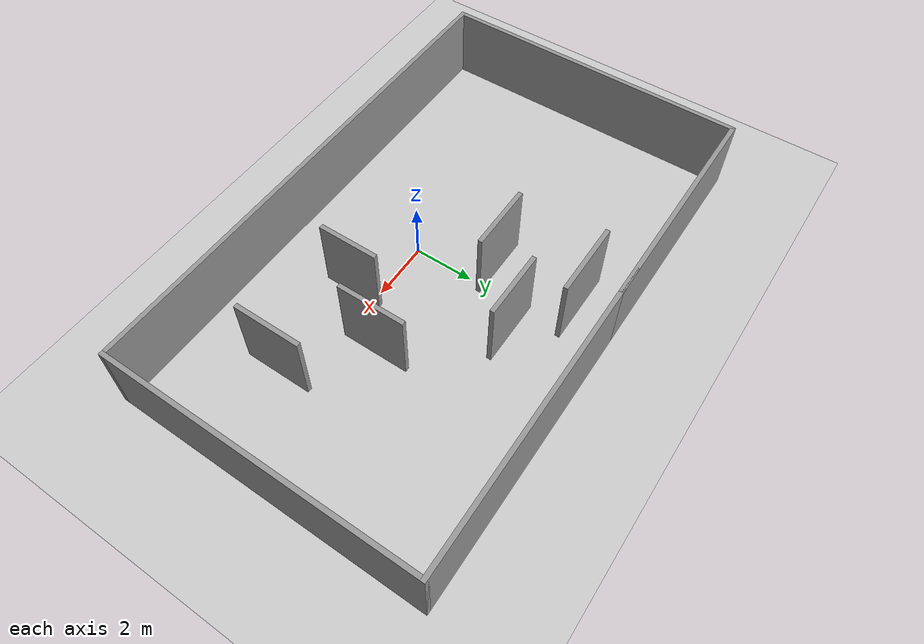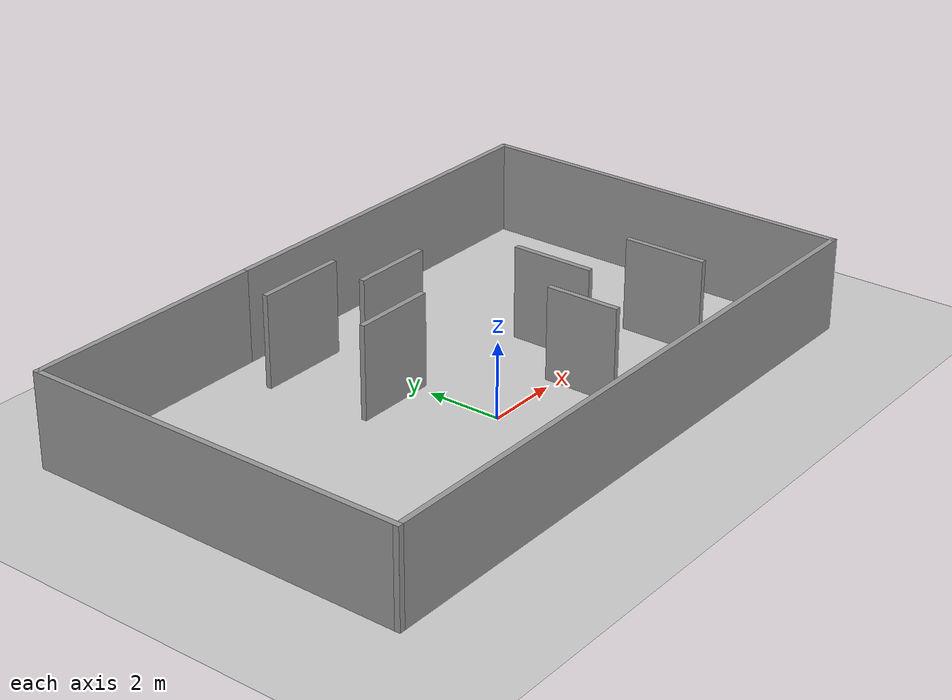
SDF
<sdf version="1.7">
 <world name="default">
  <light name="sun" type="directional">
   <pose>0 0 10 0 -0 0</pose>
   <diffuse>0.8 0.8 0.8 1</diffuse>
   <specular>0.2 0.2 0.2 1</specular>
   <attenuation>
    <range>1000</range>
    <constant>0.9</constant>
    <linear>0.01</linear>
    <quadratic>0.001</quadratic>
   </attenuation>
   <direction>-0.5 0.1 -0.9</direction>
   <spot><inner_angle>0</inner_angle><outer_angle>0</outer_angle><falloff>0</falloff></spot>
  </light>
  <model name="ground_plane">
   <static>1</static>
   <link name="link">
    <collision name="collision">
     <geometry><plane><normal>0 0 1</normal><size>100 100</size></plane></geometry>
     <surface>
      <contact><collide_bitmask>65535</collide_bitmask></contact>
      <friction><ode><mu>100</mu><mu2>50</mu2></ode></friction>
     </surface>
    </collision>
    <visual name="visual">
     <cast_shadows>0</cast_shadows>
     <geometry><plane><normal>0 0 1</normal><size>100 100</size></plane></geometry>
     <material>
      <script><uri>file://media/materials/scripts/gazebo.material</uri><name>Gazebo/Grey</name></script>
     </material>
    </visual>
   </link>
  </model>
  <gravity>0 0 -9.8</gravity>
  <magnetic_field>6e-06 2.3e-05 -4.2e-05</magnetic_field>
  <atmosphere type="adiabatic"/>
  <physics type="ode">
   <max_step_size>0.001</max_step_size>
   <real_time_factor>1</real_time_factor>
   <real_time_update_rate>1000</real_time_update_rate>
  </physics>
  <scene><ambient>0.4 0.4 0.4 1</ambient><background>0.7 0.7 0.7 1</background><shadows>1</shadows></scene>
  <spherical_coordinates>
   <surface_model>EARTH_WGS84</surface_model>
   <latitude_deg>0</latitude_deg>
   <longitude_deg>0</longitude_deg>
   <elevation>0</elevation>
   <heading_deg>0</heading_deg>
  </spherical_coordinates>
  <model name="e2e_planner_test">
   <pose>0.411279 1.43434 0 0 -0 0</pose>
   <link name="Wall_10">
    <collision name="Wall_10_Collision">
     <geometry><box><size>2 0.15 2.5</size></box></geometry>
     <pose>0 0 1.25 0 -0 0</pose>
    </collision>
    <visual name="Wall_10_Visual">
     <pose>0 0 1.25 0 -0 0</pose>
     <geometry><box><size>2 0.15 2.5</size></box></geometry>
     <material>
      <script><uri>file://media/materials/scripts/gazebo.material</uri><name>Gazebo/Grey</name></script>
      <ambient>1 1 1 1</ambient>
     </material>
     <meta><layer>0</layer></meta>
    </visual>
    <pose>1.96124 -2.16623 0 0 -0 -1.5708</pose>
   </link>
   <link name="Wall_12">
    <collision name="Wall_12_Collision">
     <geometry><box><size>2.25 0.15 2.5</size></box></geometry>
     <pose>0 0 1.25 0 -0 0</pose>
    </collision>
    <visual name="Wall_12_Visual">
     <pose>0 0 1.25 0 -0 0</pose>
     <geometry><box><size>2.25 0.15 2.5</size></box></geometry>
     <material>
      <script><uri>file://media/materials/scripts/gazebo.material</uri><name>Gazebo/Grey</name></script>
      <ambient>1 1 1 1</ambient>
     </material>
     <meta><layer>0</layer></meta>
    </visual>
    <pose>3.32896 -0.299986 0 0 -0 -1.5708</pose>
   </link>
   <link name="Wall_21">
    <collision name="Wall_21_Collision">
     <geometry><box><size>2.5 0.15 2.5</size></box></geometry>
     <pose>0 0 1.25 0 -0 0</pose>
    </collision>
    <visual name="Wall_21_Visual">
     <pose>0 0 1.25 0 -0 0</pose>
     <geometry><box><size>2.5 0.15 2.5</size></box></geometry>
     <material>
      <script><uri>file://media/materials/scripts/gazebo.material</uri><name>Gazebo/Grey</name></script>
      <ambient>1 1 1 1</ambient>
     </material>
     <meta><layer>0</layer></meta>
    </visual>
    <pose>-1.3692 3.8475 0 0 -0 0</pose>
   </link>
   <link name="Wall_23">
    <collision name="Wall_23_Collision">
     <geometry><box><size>2.25 0.15 2.5</size></box></geometry>
     <pose>0 0 1.25 0 -0 0</pose>
    </collision>
    <visual name="Wall_23_Visual">
     <pose>0 0 1.25 0 -0 0</pose>
     <geometry><box><size>2.25 0.15 2.5</size></box></geometry>
     <material>
      <script><uri>file://media/materials/scripts/gazebo.material</uri><name>Gazebo/Grey</name></script>
      <ambient>1 1 1 1</ambient>
     </material>
     <meta><layer>0</layer></meta>
    </visual>
    <pose>5.44089 -2.21077 0 0 -0 -1.5708</pose>
   </link>
   <link name="Wall_26">
    <collision name="Wall_26_Collision">
     <geometry><box><size>10.5 0.15 2.5</size></box></geometry>
     <pose>0 0 1.25 0 -0 0</pose>
    </collision>
    <visual name="Wall_26_Visual">
     <pose>0 0 1.25 0 -0 0</pose>
     <geometry><box><size>10.5 0.15 2.5</size></box></geometry>
     <material>
      <script><uri>file://media/materials/scripts/gazebo.material</uri><name>Gazebo/Grey</name></script>
      <ambient>1 1 1 1</ambient>
     </material>
     <meta><layer>0</layer></meta>
    </visual>
    <pose>3.375 5.175 0 0 -0 0</pose>
   </link>
   <link name="Wall_27">
    <collision name="Wall_27_Collision">
     <geometry><box><size>10.5 0.15 2.5</size></box></geometry>
     <pose>0 0 1.25 0 -0 0</pose>
    </collision>
    <visual name="Wall_27_Visual">
     <pose>0 0 1.25 0 -0 0</pose>
     <geometry><box><size>10.5 0.15 2.5</size></box></geometry>
     <material>
      <script><uri>file://media/materials/scripts/gazebo.material</uri><name>Gazebo/Grey</name></script>
      <ambient>1 1 1 1</ambient>
     </material>
     <meta><layer>0</layer></meta>
    </visual>
    <pose>8.55 -0 0 0 -0 -1.5708</pose>
   </link>
   <link name="Wall_28">
    <collision name="Wall_28_Collision">
     <geometry><box><size>17.25 0.15 2.5</size></box></geometry>
     <pose>0 0 1.25 0 -0 0</pose>
    </collision>
    <visual name="Wall_28_Visual">
     <pose>0 0 1.25 0 -0 0</pose>
     <geometry><box><size>17.25 0.15 2.5</size></box></geometry>
     <material>
      <script><uri>file://media/materials/scripts/gazebo.material</uri><name>Gazebo/Grey</name></script>
      <ambient>1 1 1 1</ambient>
     </material>
     <meta><layer>0</layer></meta>
    </visual>
    <pose>-0 -5.175 0 0 -0 3.14159</pose>
   </link>
   <link name="Wall_29">
    <collision name="Wall_29_Collision">
     <geometry><box><size>10.5 0.15 2.5</size></box></geometry>
     <pose>0 0 1.25 0 -0 0</pose>
    </collision>
    <visual name="Wall_29_Visual">
     <pose>0 0 1.25 0 -0 0</pose>
     <geometry><box><size>10.5 0.15 2.5</size></box></geometry>
     <material>
      <script><uri>file://media/materials/scripts/gazebo.material</uri><name>Gazebo/Grey</name></script>
      <ambient>1 1 1 1</ambient>
     </material>
     <meta><layer>0</layer></meta>
    </visual>
    <pose>-8.55 -0 0 0 -0 1.5708</pose>
   </link>
   <link name="Wall_3">
    <collision name="Wall_3_Collision">
     <geometry><box><size>2.25 0.15 2.5</size></box></geometry>
     <pose>0 0 1.25 0 -0 0</pose>
    </collision>
    <visual name="Wall_3_Visual">
     <pose>0 0 1.25 0 -0 0</pose>
     <geometry><box><size>2.25 0.15 2.5</size></box></geometry>
     <material>
      <script><uri>file://media/materials/scripts/gazebo.material</uri><name>Gazebo/Grey</name></script>
      <ambient>1 1 1 1</ambient>
     </material>
     <meta><layer>0</layer></meta>
    </visual>
    <pose>-1.29307 0.991377 0 0 -0 0</pose>
   </link>
   <link name="Wall_30">
    <collision name="Wall_30_Collision">
     <geometry><box><size>7.75 0.15 2.5</size></box></geometry>
     <pose>0 0 1.25 0 -0 0</pose>
    </collision>
    <visual name="Wall_30_Visual">
     <pose>0 0 1.25 0 -0 0</pose>
     <geometry><box><size>7.75 0.15 2.5</size></box></geometry>
     <material>
      <script><uri>file://media/materials/scripts/gazebo.material</uri><name>Gazebo/Grey</name></script>
      <ambient>1 1 1 1</ambient>
     </material>
     <meta><layer>0</layer></meta>
    </visual>
    <pose>-4.75 5.175 0 0 -0 0</pose>
   </link>
   <link name="Wall_6">
    <collision name="Wall_6_Collision">
     <geometry><box><size>2.25 0.15 2.5</size></box></geometry>
     <pose>0 0 1.25 0 -0 0</pose>
    </collision>
    <visual name="Wall_6_Visual">
     <pose>0 0 1.25 0 -0 0</pose>
     <geometry><box><size>2.25 0.15 2.5</size></box></geometry>
     <material>
      <script><uri>file://media/materials/scripts/gazebo.material</uri><name>Gazebo/Grey</name></script>
      <ambient>1 1 1 1</ambient>
     </material>
     <meta><layer>0</layer></meta>
    </visual>
    <pose>0.557382 2.58035 0 0 -0 0</pose>
   </link>
   <static>1</static>
  </model>
 </world>
</sdf>
